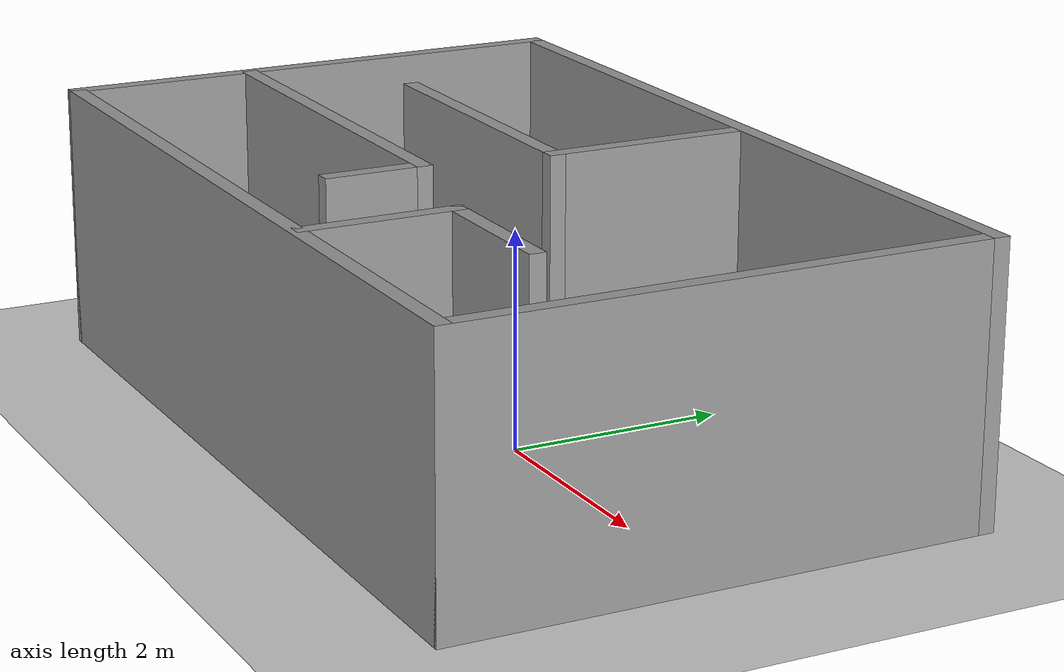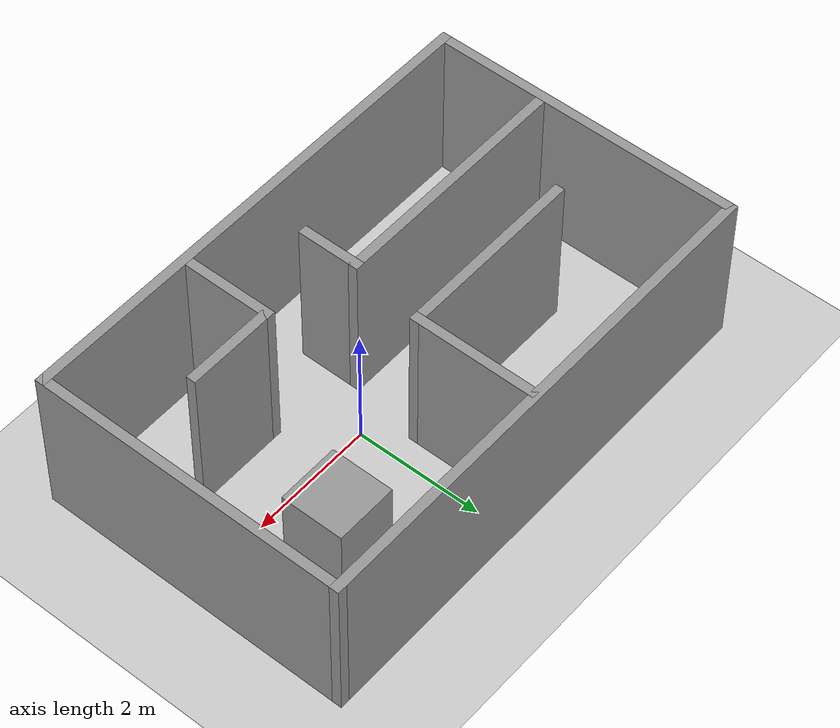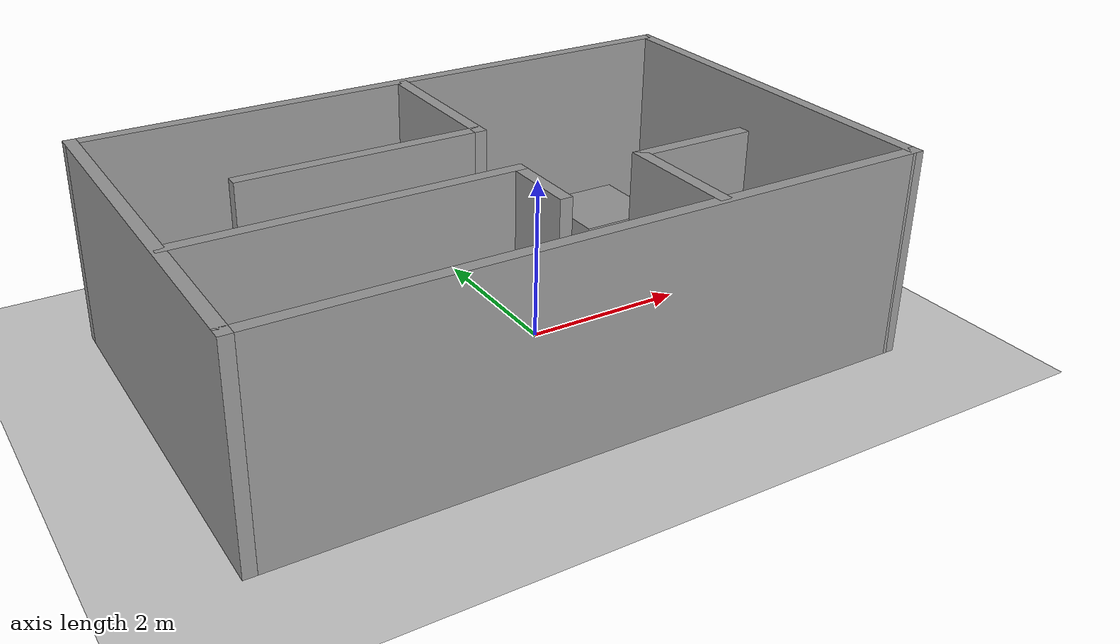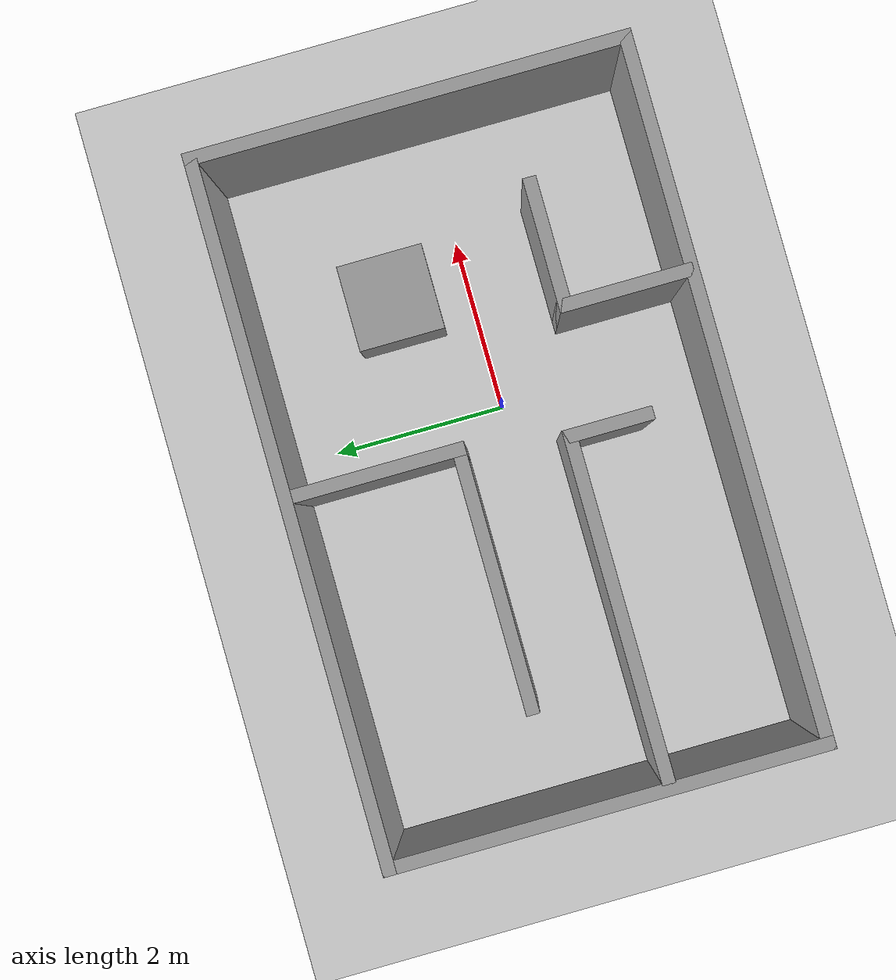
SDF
<sdf version="1.7">
 <world name="default">
  <light name="sun" type="directional">
   <pose>0 0 10 0 -0 0</pose>
   <diffuse>0.8 0.8 0.8 1</diffuse>
   <specular>0.2 0.2 0.2 1</specular>
   <attenuation>
    <range>1000</range>
    <constant>0.9</constant>
    <linear>0.01</linear>
    <quadratic>0.001</quadratic>
   </attenuation>
   <direction>-0.5 0.1 -0.9</direction>
   <spot><inner_angle>0</inner_angle><outer_angle>0</outer_angle><falloff>0</falloff></spot>
  </light>
  <model name="ground_plane">
   <static>1</static>
   <link name="link">
    <collision name="collision">
     <geometry><plane><normal>0 0 1</normal><size>100 100</size></plane></geometry>
     <surface><friction><ode><mu>100</mu><mu2>50</mu2></ode></friction></surface>
    </collision>
    <visual name="visual">
     <cast_shadows>0</cast_shadows>
     <geometry><plane><normal>0 0 1</normal><size>100 100</size></plane></geometry>
     <material>
      <script><uri>file://media/materials/scripts/gazebo.material</uri><name>Gazebo/Grey</name></script>
     </material>
    </visual>
   </link>
  </model>
  <gravity>0 0 -9.8</gravity>
  <magnetic_field>6e-06 2.3e-05 -4.2e-05</magnetic_field>
  <atmosphere type="adiabatic"/>
  <physics type="ode">
   <max_step_size>0.001</max_step_size>
   <real_time_factor>1</real_time_factor>
   <real_time_update_rate>1000</real_time_update_rate>
  </physics>
  <scene><ambient>0.4 0.4 0.4 1</ambient><background>0.7 0.7 0.7 1</background><shadows>1</shadows></scene>
  <audio><device>default</device></audio>
  <spherical_coordinates>
   <surface_model>EARTH_WGS84</surface_model>
   <latitude_deg>0</latitude_deg>
   <longitude_deg>0</longitude_deg>
   <elevation>0</elevation>
   <heading_deg>0</heading_deg>
  </spherical_coordinates>
  <model name="room">
   <pose>-0.586253 0.095987 0 0 -0 0</pose>
   <link name="Wall_10">
    <collision name="Wall_10_Collision">
     <geometry><box><size>2 0.15 2.5</size></box></geometry>
     <pose>0 0 1.25 0 -0 0</pose>
    </collision>
    <visual name="Wall_10_Visual">
     <pose>0 0 1.25 0 -0 0</pose>
     <geometry><box><size>2 0.15 2.5</size></box></geometry>
     <material>
      <script><uri>file://media/materials/scripts/gazebo.material</uri><name>Gazebo/Grey</name></script>
      <ambient>1 1 1 1</ambient>
     </material>
     <meta><layer>0</layer></meta>
    </visual>
    <pose>0.147161 1.42826 0 0 -0 -1.5708</pose>
   </link>
   <link name="Wall_11">
    <collision name="Wall_11_Collision">
     <geometry><box><size>3 0.15 2.5</size></box></geometry>
     <pose>0 0 1.25 0 -0 0</pose>
    </collision>
    <visual name="Wall_11_Visual">
     <pose>0 0 1.25 0 -0 0</pose>
     <geometry><box><size>3 0.15 2.5</size></box></geometry>
     <material>
      <script><uri>file://media/materials/scripts/gazebo.material</uri><name>Gazebo/Grey</name></script>
      <ambient>1 1 1 1</ambient>
     </material>
     <meta><layer>0</layer></meta>
    </visual>
    <pose>-1.27784 0.503265 0 0 -0 3.14159</pose>
   </link>
   <link name="Wall_13">
    <collision name="Wall_13_Collision">
     <geometry><box><size>4 0.15 2.5</size></box></geometry>
     <pose>0 0 1.25 0 -0 0</pose>
    </collision>
    <visual name="Wall_13_Visual">
     <pose>0 0 1.25 0 -0 0</pose>
     <geometry><box><size>4 0.15 2.5</size></box></geometry>
     <material>
      <script><uri>file://media/materials/scripts/gazebo.material</uri><name>Gazebo/Grey</name></script>
      <ambient>1 1 1 1</ambient>
     </material>
     <meta><layer>0</layer></meta>
    </visual>
    <pose>-1.96247 -0.682197 0 0 -0 0</pose>
   </link>
   <link name="Wall_14">
    <collision name="Wall_14_Collision">
     <geometry><box><size>1 0.15 2.5</size></box></geometry>
     <pose>0 0 1.25 0 -0 0</pose>
    </collision>
    <visual name="Wall_14_Visual">
     <pose>0 0 1.25 0 -0 0</pose>
     <geometry><box><size>1 0.15 2.5</size></box></geometry>
     <material>
      <script><uri>file://media/materials/scripts/gazebo.material</uri><name>Gazebo/Grey</name></script>
      <ambient>1 1 1 1</ambient>
     </material>
     <meta><layer>0</layer></meta>
    </visual>
    <pose>-0.037474 -1.1072 0 0 -0 -1.5708</pose>
   </link>
   <link name="Wall_16">
    <collision name="Wall_16_Collision">
     <geometry><box><size>1.5 0.15 2.5</size></box></geometry>
     <pose>0 0 1.25 0 -0 0</pose>
    </collision>
    <visual name="Wall_16_Visual">
     <pose>0 0 1.25 0 -0 0</pose>
     <geometry><box><size>1.5 0.15 2.5</size></box></geometry>
     <material>
      <script><uri>file://media/materials/scripts/gazebo.material</uri><name>Gazebo/Grey</name></script>
      <ambient>1 1 1 1</ambient>
     </material>
     <meta><layer>0</layer></meta>
    </visual>
    <pose>1.3234 -1.68935 0 0 -0 1.5708</pose>
   </link>
   <link name="Wall_17">
    <collision name="Wall_17_Collision">
     <geometry><box><size>1.5 0.15 2.5</size></box></geometry>
     <pose>0 0 1.25 0 -0 0</pose>
    </collision>
    <visual name="Wall_17_Visual">
     <pose>0 0 1.25 0 -0 0</pose>
     <geometry><box><size>1.5 0.15 2.5</size></box></geometry>
     <material>
      <script><uri>file://media/materials/scripts/gazebo.material</uri><name>Gazebo/Grey</name></script>
      <ambient>1 1 1 1</ambient>
     </material>
     <meta><layer>0</layer></meta>
    </visual>
    <pose>1.9984 -1.01435 0 0 -0 0</pose>
   </link>
   <link name="Wall_5">
    <collision name="Wall_5_Collision">
     <geometry><box><size>8 0.15 2.5</size></box></geometry>
     <pose>0 0 1.25 0 -0 0</pose>
    </collision>
    <visual name="Wall_5_Visual">
     <pose>0 0 1.25 0 -0 0</pose>
     <geometry><box><size>8 0.15 2.5</size></box></geometry>
     <material>
      <script><uri>file://media/materials/scripts/gazebo.material</uri><name>Gazebo/Grey</name></script>
      <ambient>1 1 1 1</ambient>
     </material>
     <meta><layer>0</layer></meta>
    </visual>
    <pose>0 2.425 0 0 -0 3.14159</pose>
   </link>
   <link name="Wall_6">
    <collision name="Wall_6_Collision">
     <geometry><box><size>5 0.15 2.5</size></box></geometry>
     <pose>0 0 1.25 0 -0 0</pose>
    </collision>
    <visual name="Wall_6_Visual">
     <pose>0 0 1.25 0 -0 0</pose>
     <geometry><box><size>5 0.15 2.5</size></box></geometry>
     <material>
      <script><uri>file://media/materials/scripts/gazebo.material</uri><name>Gazebo/Grey</name></script>
      <ambient>1 1 1 1</ambient>
     </material>
     <meta><layer>0</layer></meta>
    </visual>
    <pose>-3.925 -0 0 0 -0 -1.5708</pose>
   </link>
   <link name="Wall_7">
    <collision name="Wall_7_Collision">
     <geometry><box><size>8 0.15 2.5</size></box></geometry>
     <pose>0 0 1.25 0 -0 0</pose>
    </collision>
    <visual name="Wall_7_Visual">
     <pose>0 0 1.25 0 -0 0</pose>
     <geometry><box><size>8 0.15 2.5</size></box></geometry>
     <material>
      <script><uri>file://media/materials/scripts/gazebo.material</uri><name>Gazebo/Grey</name></script>
      <ambient>1 1 1 1</ambient>
     </material>
     <meta><layer>0</layer></meta>
    </visual>
    <pose>0 -2.425 0 0 -0 0</pose>
   </link>
   <link name="Wall_8">
    <collision name="Wall_8_Collision">
     <geometry><box><size>5 0.15 2.5</size></box></geometry>
     <pose>0 0 1.25 0 -0 0</pose>
    </collision>
    <visual name="Wall_8_Visual">
     <pose>0 0 1.25 0 -0 0</pose>
     <geometry><box><size>5 0.15 2.5</size></box></geometry>
     <material>
      <script><uri>file://media/materials/scripts/gazebo.material</uri><name>Gazebo/Grey</name></script>
      <ambient>1 1 1 1</ambient>
     </material>
     <meta><layer>0</layer></meta>
    </visual>
    <pose>3.925 -0 0 0 -0 1.5708</pose>
   </link>
   <static>1</static>
  </model>
  <model name="unit_box">
   <pose>1.49472 0.887814 0.5 0 -0 0</pose>
   <link name="link">
    <inertial>
     <mass>1</mass>
     <inertia>
      <ixx>0.166667</ixx>
      <ixy>0</ixy>
      <ixz>0</ixz>
      <iyy>0.166667</iyy>
      <iyz>0</iyz>
      <izz>0.166667</izz>
     </inertia>
    </inertial>
    <collision name="collision"><geometry><box><size>1 1 1</size></box></geometry></collision>
    <visual name="visual">
     <geometry><box><size>1 1 1</size></box></geometry>
     <material>
      <script><name>Gazebo/Grey</name><uri>file://media/materials/scripts/gazebo.material</uri></script>
     </material>
    </visual>
   </link>
  </model>
 </world>
</sdf>
